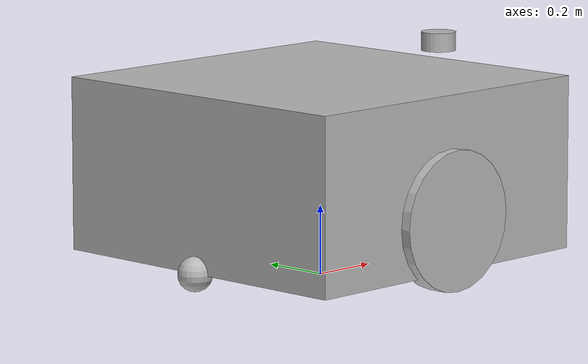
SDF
<?xml version="1.0"?>
<sdf version="1.6">
 <model name='vehicle'>
    <pose>0 0 0.325 0 -0 0</pose>
    <link name='base_link'>
        <pose>0.0 0 0.0 0 0 0</pose>
        <inertial>
          <mass>1.14395</mass>
          <inertia>
            <ixx>0.126164</ixx>
            <ixy>0</ixy>
            <ixz>0</ixz>
            <iyy>0.416519</iyy>
            <iyz>0</iyz>
            <izz>0.481014</izz>
          </inertia>
        </inertial>
        <visual name='visual'>
          <geometry>
            <box>
              <size>1.0 1 0.5</size>
            </box>
          </geometry>
        </visual>
        <collision name='collision'>
          <geometry>
            <box>
              <size>1.0 1 0.5</size>
            </box>
          </geometry>
        </collision>
      </link>

      <link name='left_wheel'>
        <pose>0.0 0.5 -0.1 -1.5707 0 0</pose>
        <inertial>
          <mass>2</mass>
          <inertia>
            <ixx>0.145833</ixx>
            <ixy>0</ixy>
            <ixz>0</ixz>
            <iyy>0.145833</iyy>
            <iyz>0</iyz>
            <izz>0.125</izz>
          </inertia>
        </inertial>
        <visual name='visual'>
          <geometry>
            <cylinder>
                <radius>0.2</radius>
                <length>0.06</length>
          </cylinder>
          </geometry>
        </visual>
        <collision name='collision'>
          <geometry>
            <cylinder>
                <radius>0.2</radius>
                <length>0.06</length>
          </cylinder>
          </geometry>
          <surface>
            <friction>
              <ode>
                <mu>1</mu>
                <mu2>1</mu2>
                <slip1>0</slip1>
                <slip2>0</slip2>
              </ode>
            </friction>
            <contact>
              <ode>
                <soft_cfm>0</soft_cfm>
                <soft_erp>0.2</soft_erp>
                <kp>1e+13</kp>
                <kd>1</kd>
                <max_vel>0.01</max_vel>
                <min_depth>0.01</min_depth>
              </ode>
            </contact>
          </surface>
        </collision>
      </link>

      <link name='right_wheel'>
        <pose>0.0 -0.5 -0.1 -1.5707 0 0</pose>
        <inertial>
          <mass>2</mass>
          <inertia>
            <ixx>0.145833</ixx>
            <ixy>0</ixy>
            <ixz>0</ixz>
            <iyy>0.145833</iyy>
            <iyz>0</iyz>
            <izz>0.125</izz>
          </inertia>
        </inertial>
        <visual name='visual'>
          <geometry>
            <cylinder>
                <radius>0.2</radius>
                <length>0.06</length>
          </cylinder>
          </geometry>
        </visual>
        <collision name='collision'>
          <geometry>
            <cylinder>
                <radius>0.2</radius>
                <length>0.06</length>
            </cylinder>
          </geometry>
          <surface>
            <friction>
              <ode>
                <mu>1</mu>
                <mu2>1</mu2>
                <slip1>0</slip1>
                <slip2>0</slip2>
              </ode>
            </friction>
            <contact>
              <ode>
                <soft_cfm>0</soft_cfm>
                <soft_erp>0.2</soft_erp>
                <kp>1e+13</kp>
                <kd>1</kd>
                <max_vel>0.01</max_vel>
                <min_depth>0.01</min_depth>
              </ode>
            </contact>
          </surface>
        </collision>
      </link>

      <link name='caster_back'>
        <pose>-0.5 -0 -0.25 0 -0 0</pose>
        <inertial>
          <mass>1</mass>
          <inertia>
            <ixx>0.1</ixx>
            <ixy>0</ixy>
            <ixz>0</ixz>
            <iyy>0.1</iyy>
            <iyz>0</iyz>
            <izz>0.1</izz>
          </inertia>
        </inertial>
        <visual name='visual'>
          <geometry>
            <sphere>
              <radius>0.05</radius>
            </sphere>
          </geometry>
        </visual>
        <collision name='collision'>
          <geometry>
            <sphere>
              <radius>0.05</radius>
            </sphere>
          </geometry>
        </collision>
      </link>

      <link name='caster_front'>
        <pose>0.5 -0 -0.25 0 -0 0</pose>
        <inertial>
          <mass>1</mass>
          <inertia>
            <ixx>0.1</ixx>
            <ixy>0</ixy>
            <ixz>0</ixz>
            <iyy>0.1</iyy>
            <iyz>0</iyz>
            <izz>0.1</izz>
          </inertia>
        </inertial>
        <visual name='visual'>
          <geometry>
            <sphere>
              <radius>0.05</radius>
            </sphere>
          </geometry>
        </visual>
        <collision name='collision'>
          <geometry>
            <sphere>
              <radius>0.05</radius>
            </sphere>
          </geometry>
        </collision>
      </link>

      <joint name='left_wheel_joint' type='revolute'>
        <parent>base_link</parent>
        <child>left_wheel</child>
        <axis>
          <xyz>0 0 1</xyz>
          <limit>
            <lower>-1.79769e+308</lower>
            <upper>1.79769e+308</upper>
          </limit>
        </axis>
      </joint>

      <joint name='right_wheel_joint' type='revolute'>
        <parent>base_link</parent>
        <child>right_wheel</child>
        <axis>
          <xyz>0 0 1</xyz>
          <limit>
            <lower>-1.79769e+308</lower>
            <upper>1.79769e+308</upper>
          </limit>
        </axis>
      </joint>

      <joint name='caster_wheel_back' type='ball'>
        <parent>base_link</parent>
        <child>caster_back</child>
      </joint>

      <joint name='caster_wheel_front' type='ball'>
        <parent>base_link</parent>
        <child>caster_front</child>
      </joint>

      <plugin name='diff_drive' filename='libgazebo_ros_diff_drive.so'>

        <ros>
        </ros>

        <!-- wheels -->
        <left_joint>left_wheel_joint</left_joint>
        <right_joint>right_wheel_joint</right_joint>

        <!-- kinematics -->
        <wheel_separation>1.0</wheel_separation>
        <wheel_diameter>0.4</wheel_diameter>
        <update_rate>20</update_rate>
        <!-- limits -->
        <max_wheel_torque>20</max_wheel_torque>
        <max_wheel_acceleration>1.0</max_wheel_acceleration>

        <!-- output -->
        <publish_odom>true</publish_odom>
        <publish_odom_tf>true</publish_odom_tf>
        <publish_wheel_tf>true</publish_wheel_tf>

        <odometry_frame>odom</odometry_frame>
        <robot_base_frame>base_link</robot_base_frame>

      </plugin>

     <link name="camera_link">
      <inertial>
        <pose>0.0 0 0.0 0 0 0</pose>
        <inertia>
          <ixx>0.001</ixx>
          <ixy>0.000</ixy>
          <ixz>0.000</ixz>
          <iyy>0.001</iyy>
          <iyz>0.000</iyz>
          <izz>0.001</izz>
        </inertia>
        <mass>0.01</mass>
      </inertial>

      <collision name="camera_link_collision">
        <pose>0.0 0 0.0 0 0 0</pose>
        <geometry>
          <cylinder>
            <radius>0.0508</radius>
            <length>0.055</length>
          </cylinder>
        </geometry>
      </collision>

      <visual name="camera_visual">
        <pose>0.0 0 0.0 0 0 0</pose>
        <geometry>
          <cylinder>
            <radius>0.0508</radius>
            <length>0.055</length>
          </cylinder>
        </geometry>
      </visual>
      <pose>0.5 0.0 0.3 0.0 0.0 0.0</pose>
      <sensor type="depth" name="camera">
          <update_rate>15</update_rate>
          <visualize>true</visualize>
          <camera>
            <horizontal_fov>1.02974</horizontal_fov>
            <image>
              <width>640</width>
              <height>480</height>
              <format>B8G8R8</format>
            </image>
            <depth_camera>
            </depth_camera>
            <clip>
              <near>0.02</near>
              <far>300</far>
            </clip>
            <noise>
              <type>gaussian</type>
              <mean>0.0</mean>
              <stddev>0.007</stddev>
            </noise>
          </camera>
          <plugin name="camera_controller" filename="libgazebo_ros_camera.so">
            <ros>
              <!-- topics need to be prefixed with camera_name for remapping -->
              <remapping>mycamera/image_raw:=camera/image</remapping>
              <remapping>mycamera/depth/image_raw:=camera/depth</remapping>
              <remapping>mycamera/camera_info:=camera/camera_info</remapping>
              <remapping>mycamera/depth/camera_info:=camera/depth_camera_info</remapping>
              <remapping>mycamera/points:=depth/color/points</remapping>
            </ros>
            <!-- omit camera_name to default to sensor name -->
            <camera_name>mycamera</camera_name>
            <frame_name>camera_link</frame_name>
            <min_depth>0.1</min_depth>
            <max_depth>500</max_depth>
          </plugin>
        </sensor>
    </link>

    <joint name="cam_joint" type="fixed">
      <parent>base_link</parent>
      <child>camera_link</child>
      <pose>0.00 0.0 0.0 0 0 0.0</pose>
      <axis>
        <xyz>0 0 1</xyz>
      </axis>
    </joint>

    </model>
</sdf>
